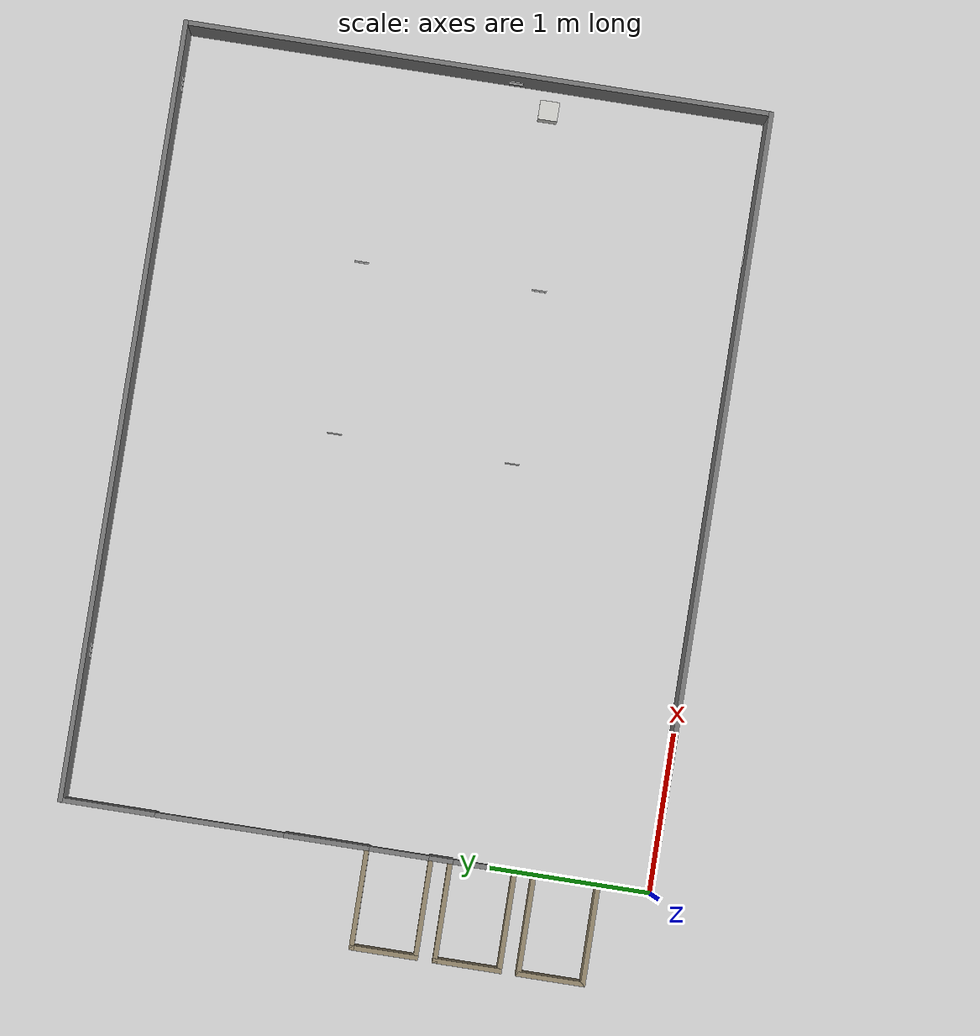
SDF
<sdf version="1.9">
 <world name="almacen_racks">
  <plugin name="ignition::gazebo::systems::Physics" filename="ignition-gazebo-physics-system"/>
  <plugin name="ignition::gazebo::systems::UserCommands" filename="ignition-gazebo-user-commands-system"/>
  <plugin name="ignition::gazebo::systems::SceneBroadcaster" filename="ignition-gazebo-scene-broadcaster-system"/>
  <plugin name="ignition::gazebo::systems::Sensors" filename="ignition-gazebo-sensors-system">
   <render_engine>ogre2</render_engine>
  </plugin>
  <plugin name="ignition::gazebo::systems::Imu" filename="ignition-gazebo-imu-system"/>
  <gravity>0 0 -9.8</gravity>
  <magnetic_field>6e-06 2.3e-05 -4.2e-05</magnetic_field>
  <atmosphere type="adiabatic"/>
  <physics type="ode">
   <max_step_size>0.001</max_step_size>
   <real_time_factor>1</real_time_factor>
   <real_time_update_rate>1000</real_time_update_rate>
  </physics>
  <scene><ambient>0.4 0.4 0.4 1</ambient><background>0.7 0.7 0.7 1</background><shadows>true</shadows></scene>
  <model name="ground_plane">
   <static>true</static>
   <link name="link">
    <collision name="col">
     <geometry><plane><normal>0 0 1</normal><size>100 100</size></plane></geometry>
    </collision>
    <visual name="vis">
     <geometry><plane><normal>0 0 1</normal><size>100 100</size></plane></geometry>
     <material><ambient>0.8 0.8 0.8 1</ambient><diffuse>0.8 0.8 0.8 1</diffuse></material>
    </visual>
    <inertial>
     <mass>1</mass>
     <inertia><ixx>1</ixx><ixy>0</ixy><ixz>0</ixz><iyy>1</iyy><iyz>0</iyz><izz>1</izz></inertia>
    </inertial>
   </link>
  </model>
  <model name="pared_oeste">
   <static>true</static>
   <pose>2.44 3.675 0.205 0 -0 0</pose>
   <link name="link">
    <collision name="col"><geometry><box><size>4.88 0.03 0.41</size></box></geometry></collision>
    <visual name="vis">
     <geometry><box><size>4.88 0.03 0.41</size></box></geometry>
     <material><ambient>0.45 0.45 0.45 1</ambient><diffuse>0.45 0.45 0.45 1</diffuse></material>
    </visual>
    <inertial>
     <mass>1</mass>
     <inertia><ixx>1</ixx><ixy>0</ixy><ixz>0</ixz><iyy>1</iyy><iyz>0</iyz><izz>1</izz></inertia>
    </inertial>
   </link>
  </model>
  <model name="pared_este">
   <static>true</static>
   <pose>2.44 0.015 0.205 0 -0 0</pose>
   <link name="link">
    <collision name="col"><geometry><box><size>4.88 0.03 0.41</size></box></geometry></collision>
    <visual name="vis">
     <geometry><box><size>4.88 0.03 0.41</size></box></geometry>
     <material><ambient>0.45 0.45 0.45 1</ambient><diffuse>0.45 0.45 0.45 1</diffuse></material>
    </visual>
    <inertial>
     <mass>1</mass>
     <inertia><ixx>1</ixx><ixy>0</ixy><ixz>0</ixz><iyy>1</iyy><iyz>0</iyz><izz>1</izz></inertia>
    </inertial>
   </link>
  </model>
  <model name="pared_norte">
   <static>true</static>
   <pose>4.865 1.845 0.205 0 -0 0</pose>
   <link name="link">
    <collision name="col"><geometry><box><size>0.03 3.63 0.41</size></box></geometry></collision>
    <visual name="vis">
     <geometry><box><size>0.03 3.63 0.41</size></box></geometry>
     <material><ambient>0.45 0.45 0.45 1</ambient><diffuse>0.45 0.45 0.45 1</diffuse></material>
    </visual>
    <inertial>
     <mass>1</mass>
     <inertia><ixx>1</ixx><ixy>0</ixy><ixz>0</ixz><iyy>1</iyy><iyz>0</iyz><izz>1</izz></inertia>
    </inertial>
   </link>
  </model>
  <model name="pared_sur_a">
   <static>true</static>
   <pose>0.015 0.175 0.205 0 -0 0</pose>
   <link name="link">
    <collision name="col"><geometry><box><size>0.03 0.35 0.41</size></box></geometry></collision>
    <visual name="vis">
     <geometry><box><size>0.03 0.35 0.41</size></box></geometry>
     <material><ambient>0.45 0.45 0.45 1</ambient><diffuse>0.45 0.45 0.45 1</diffuse></material>
    </visual>
    <inertial>
     <mass>1</mass>
     <inertia><ixx>1</ixx><ixy>0</ixy><ixz>0</ixz><iyy>1</iyy><iyz>0</iyz><izz>1</izz></inertia>
    </inertial>
   </link>
  </model>
  <model name="dintel_1">
   <static>true</static>
   <pose>0.015 0.535 0.335 0 -0 0</pose>
   <link name="link">
    <collision name="col"><geometry><box><size>0.03 0.37 0.15</size></box></geometry></collision>
    <visual name="vis">
     <geometry><box><size>0.03 0.37 0.15</size></box></geometry>
     <material><ambient>0.45 0.45 0.45 1</ambient><diffuse>0.45 0.45 0.45 1</diffuse></material>
    </visual>
    <inertial>
     <mass>1</mass>
     <inertia><ixx>1</ixx><ixy>0</ixy><ixz>0</ixz><iyy>1</iyy><iyz>0</iyz><izz>1</izz></inertia>
    </inertial>
   </link>
  </model>
  <model name="dock_1_izq">
   <static>true</static>
   <pose>-0.31 0.335 0.13 0 -0 0</pose>
   <link name="link">
    <collision name="col"><geometry><box><size>0.62 0.03 0.26</size></box></geometry></collision>
    <visual name="vis">
     <geometry><box><size>0.62 0.03 0.26</size></box></geometry>
     <material><ambient>0.55 0.5 0.4 1</ambient><diffuse>0.55 0.5 0.4 1</diffuse></material>
    </visual>
    <inertial>
     <mass>1</mass>
     <inertia><ixx>1</ixx><ixy>0</ixy><ixz>0</ixz><iyy>1</iyy><iyz>0</iyz><izz>1</izz></inertia>
    </inertial>
   </link>
  </model>
  <model name="dock_1_der">
   <static>true</static>
   <pose>-0.31 0.735 0.13 0 -0 0</pose>
   <link name="link">
    <collision name="col"><geometry><box><size>0.62 0.03 0.26</size></box></geometry></collision>
    <visual name="vis">
     <geometry><box><size>0.62 0.03 0.26</size></box></geometry>
     <material><ambient>0.55 0.5 0.4 1</ambient><diffuse>0.55 0.5 0.4 1</diffuse></material>
    </visual>
    <inertial>
     <mass>1</mass>
     <inertia><ixx>1</ixx><ixy>0</ixy><ixz>0</ixz><iyy>1</iyy><iyz>0</iyz><izz>1</izz></inertia>
    </inertial>
   </link>
  </model>
  <model name="dock_1_frente">
   <static>true</static>
   <pose>-0.605 0.535 0.13 0 -0 0</pose>
   <link name="link">
    <collision name="col"><geometry><box><size>0.03 0.43 0.26</size></box></geometry></collision>
    <visual name="vis">
     <geometry><box><size>0.03 0.43 0.26</size></box></geometry>
     <material><ambient>0.55 0.5 0.4 1</ambient><diffuse>0.55 0.5 0.4 1</diffuse></material>
    </visual>
    <inertial>
     <mass>1</mass>
     <inertia><ixx>1</ixx><ixy>0</ixy><ixz>0</ixz><iyy>1</iyy><iyz>0</iyz><izz>1</izz></inertia>
    </inertial>
   </link>
  </model>
  <model name="pared_sur_b">
   <static>true</static>
   <pose>0.015 0.795 0.205 0 -0 0</pose>
   <link name="link">
    <collision name="col"><geometry><box><size>0.03 0.15 0.41</size></box></geometry></collision>
    <visual name="vis">
     <geometry><box><size>0.03 0.15 0.41</size></box></geometry>
     <material><ambient>0.45 0.45 0.45 1</ambient><diffuse>0.45 0.45 0.45 1</diffuse></material>
    </visual>
    <inertial>
     <mass>1</mass>
     <inertia><ixx>1</ixx><ixy>0</ixy><ixz>0</ixz><iyy>1</iyy><iyz>0</iyz><izz>1</izz></inertia>
    </inertial>
   </link>
  </model>
  <model name="dintel_2">
   <static>true</static>
   <pose>0.015 1.055 0.335 0 -0 0</pose>
   <link name="link">
    <collision name="col"><geometry><box><size>0.03 0.37 0.15</size></box></geometry></collision>
    <visual name="vis">
     <geometry><box><size>0.03 0.37 0.15</size></box></geometry>
     <material><ambient>0.45 0.45 0.45 1</ambient><diffuse>0.45 0.45 0.45 1</diffuse></material>
    </visual>
    <inertial>
     <mass>1</mass>
     <inertia><ixx>1</ixx><ixy>0</ixy><ixz>0</ixz><iyy>1</iyy><iyz>0</iyz><izz>1</izz></inertia>
    </inertial>
   </link>
  </model>
  <model name="dock_2_izq">
   <static>true</static>
   <pose>-0.31 0.855 0.13 0 -0 0</pose>
   <link name="link">
    <collision name="col"><geometry><box><size>0.62 0.03 0.26</size></box></geometry></collision>
    <visual name="vis">
     <geometry><box><size>0.62 0.03 0.26</size></box></geometry>
     <material><ambient>0.55 0.5 0.4 1</ambient><diffuse>0.55 0.5 0.4 1</diffuse></material>
    </visual>
    <inertial>
     <mass>1</mass>
     <inertia><ixx>1</ixx><ixy>0</ixy><ixz>0</ixz><iyy>1</iyy><iyz>0</iyz><izz>1</izz></inertia>
    </inertial>
   </link>
  </model>
  <model name="dock_2_der">
   <static>true</static>
   <pose>-0.31 1.255 0.13 0 -0 0</pose>
   <link name="link">
    <collision name="col"><geometry><box><size>0.62 0.03 0.26</size></box></geometry></collision>
    <visual name="vis">
     <geometry><box><size>0.62 0.03 0.26</size></box></geometry>
     <material><ambient>0.55 0.5 0.4 1</ambient><diffuse>0.55 0.5 0.4 1</diffuse></material>
    </visual>
    <inertial>
     <mass>1</mass>
     <inertia><ixx>1</ixx><ixy>0</ixy><ixz>0</ixz><iyy>1</iyy><iyz>0</iyz><izz>1</izz></inertia>
    </inertial>
   </link>
  </model>
  <model name="dock_2_frente">
   <static>true</static>
   <pose>-0.605 1.055 0.13 0 -0 0</pose>
   <link name="link">
    <collision name="col"><geometry><box><size>0.03 0.43 0.26</size></box></geometry></collision>
    <visual name="vis">
     <geometry><box><size>0.03 0.43 0.26</size></box></geometry>
     <material><ambient>0.55 0.5 0.4 1</ambient><diffuse>0.55 0.5 0.4 1</diffuse></material>
    </visual>
    <inertial>
     <mass>1</mass>
     <inertia><ixx>1</ixx><ixy>0</ixy><ixz>0</ixz><iyy>1</iyy><iyz>0</iyz><izz>1</izz></inertia>
    </inertial>
   </link>
  </model>
  <model name="pared_sur_c">
   <static>true</static>
   <pose>0.015 1.315 0.205 0 -0 0</pose>
   <link name="link">
    <collision name="col"><geometry><box><size>0.03 0.15 0.41</size></box></geometry></collision>
    <visual name="vis">
     <geometry><box><size>0.03 0.15 0.41</size></box></geometry>
     <material><ambient>0.45 0.45 0.45 1</ambient><diffuse>0.45 0.45 0.45 1</diffuse></material>
    </visual>
    <inertial>
     <mass>1</mass>
     <inertia><ixx>1</ixx><ixy>0</ixy><ixz>0</ixz><iyy>1</iyy><iyz>0</iyz><izz>1</izz></inertia>
    </inertial>
   </link>
  </model>
  <model name="dintel_3">
   <static>true</static>
   <pose>0.015 1.575 0.335 0 -0 0</pose>
   <link name="link">
    <collision name="col"><geometry><box><size>0.03 0.37 0.15</size></box></geometry></collision>
    <visual name="vis">
     <geometry><box><size>0.03 0.37 0.15</size></box></geometry>
     <material><ambient>0.45 0.45 0.45 1</ambient><diffuse>0.45 0.45 0.45 1</diffuse></material>
    </visual>
    <inertial>
     <mass>1</mass>
     <inertia><ixx>1</ixx><ixy>0</ixy><ixz>0</ixz><iyy>1</iyy><iyz>0</iyz><izz>1</izz></inertia>
    </inertial>
   </link>
  </model>
  <model name="dock_3_izq">
   <static>true</static>
   <pose>-0.31 1.375 0.13 0 -0 0</pose>
   <link name="link">
    <collision name="col"><geometry><box><size>0.62 0.03 0.26</size></box></geometry></collision>
    <visual name="vis">
     <geometry><box><size>0.62 0.03 0.26</size></box></geometry>
     <material><ambient>0.55 0.5 0.4 1</ambient><diffuse>0.55 0.5 0.4 1</diffuse></material>
    </visual>
    <inertial>
     <mass>1</mass>
     <inertia><ixx>1</ixx><ixy>0</ixy><ixz>0</ixz><iyy>1</iyy><iyz>0</iyz><izz>1</izz></inertia>
    </inertial>
   </link>
  </model>
  <model name="dock_3_der">
   <static>true</static>
   <pose>-0.31 1.775 0.13 0 -0 0</pose>
   <link name="link">
    <collision name="col"><geometry><box><size>0.62 0.03 0.26</size></box></geometry></collision>
    <visual name="vis">
     <geometry><box><size>0.62 0.03 0.26</size></box></geometry>
     <material><ambient>0.55 0.5 0.4 1</ambient><diffuse>0.55 0.5 0.4 1</diffuse></material>
    </visual>
    <inertial>
     <mass>1</mass>
     <inertia><ixx>1</ixx><ixy>0</ixy><ixz>0</ixz><iyy>1</iyy><iyz>0</iyz><izz>1</izz></inertia>
    </inertial>
   </link>
  </model>
  <model name="dock_3_frente">
   <static>true</static>
   <pose>-0.605 1.575 0.13 0 -0 0</pose>
   <link name="link">
    <collision name="col"><geometry><box><size>0.03 0.43 0.26</size></box></geometry></collision>
    <visual name="vis">
     <geometry><box><size>0.03 0.43 0.26</size></box></geometry>
     <material><ambient>0.55 0.5 0.4 1</ambient><diffuse>0.55 0.5 0.4 1</diffuse></material>
    </visual>
    <inertial>
     <mass>1</mass>
     <inertia><ixx>1</ixx><ixy>0</ixy><ixz>0</ixz><iyy>1</iyy><iyz>0</iyz><izz>1</izz></inertia>
    </inertial>
   </link>
  </model>
  <model name="pared_sur_d">
   <static>true</static>
   <pose>0.015 2.025 0.205 0 -0 0</pose>
   <link name="link">
    <collision name="col"><geometry><box><size>0.03 0.53 0.41</size></box></geometry></collision>
    <visual name="vis">
     <geometry><box><size>0.03 0.53 0.41</size></box></geometry>
     <material><ambient>0.45 0.45 0.45 1</ambient><diffuse>0.45 0.45 0.45 1</diffuse></material>
    </visual>
    <inertial>
     <mass>1</mass>
     <inertia><ixx>1</ixx><ixy>0</ixy><ixz>0</ixz><iyy>1</iyy><iyz>0</iyz><izz>1</izz></inertia>
    </inertial>
   </link>
  </model>
  <model name="dintel_4">
   <static>true</static>
   <pose>0.015 2.69 0.335 0 -0 0</pose>
   <link name="link">
    <collision name="col"><geometry><box><size>0.03 0.8 0.15</size></box></geometry></collision>
    <visual name="vis">
     <geometry><box><size>0.03 0.8 0.15</size></box></geometry>
     <material><ambient>0.45 0.45 0.45 1</ambient><diffuse>0.45 0.45 0.45 1</diffuse></material>
    </visual>
    <inertial>
     <mass>1</mass>
     <inertia><ixx>1</ixx><ixy>0</ixy><ixz>0</ixz><iyy>1</iyy><iyz>0</iyz><izz>1</izz></inertia>
    </inertial>
   </link>
  </model>
  <model name="pared_sur_e">
   <static>true</static>
   <pose>0.015 3.39 0.205 0 -0 0</pose>
   <link name="link">
    <collision name="col"><geometry><box><size>0.03 0.6 0.41</size></box></geometry></collision>
    <visual name="vis">
     <geometry><box><size>0.03 0.6 0.41</size></box></geometry>
     <material><ambient>0.45 0.45 0.45 1</ambient><diffuse>0.45 0.45 0.45 1</diffuse></material>
    </visual>
    <inertial>
     <mass>1</mass>
     <inertia><ixx>1</ixx><ixy>0</ixy><ixz>0</ixz><iyy>1</iyy><iyz>0</iyz><izz>1</izz></inertia>
    </inertial>
   </link>
  </model>
  <model name="aruco_5">
   <static>true</static>
   <pose>3.98 0.035 0.15 7e-06 -1.57079 -1.57079</pose>
   <link name="link">
    <visual name="vis">
     <geometry><box><size>0.09 0.09 0.003</size></box></geometry>
     <material>
      <diffuse>1 1 1 1</diffuse>
      <pbr>
       <metal>
        <albedo_map>model://puzzlebot_description/textures/arucos/5.jpg</albedo_map>
        <metalness>0.0</metalness>
        <roughness>1.0</roughness>
       </metal>
      </pbr>
     </material>
    </visual>
    <collision name="col"><geometry><box><size>0.09 0.09 0.003</size></box></geometry></collision>
    <inertial>
     <mass>1</mass>
     <inertia><ixx>1</ixx><ixy>0</ixy><ixz>0</ixz><iyy>1</iyy><iyz>0</iyz><izz>1</izz></inertia>
    </inertial>
   </link>
  </model>
  <model name="aruco_21">
   <static>true</static>
   <pose>0.79 0.035 0.15 7e-06 -1.57079 -1.57079</pose>
   <link name="link">
    <visual name="vis">
     <geometry><box><size>0.09 0.09 0.003</size></box></geometry>
     <material>
      <diffuse>1 1 1 1</diffuse>
      <pbr>
       <metal>
        <albedo_map>model://puzzlebot_description/textures/arucos/21.jpg</albedo_map>
        <metalness>0.0</metalness>
        <roughness>1.0</roughness>
       </metal>
      </pbr>
     </material>
    </visual>
    <collision name="col"><geometry><box><size>0.09 0.09 0.003</size></box></geometry></collision>
    <inertial>
     <mass>1</mass>
     <inertia><ixx>1</ixx><ixy>0</ixy><ixz>0</ixz><iyy>1</iyy><iyz>0</iyz><izz>1</izz></inertia>
    </inertial>
   </link>
  </model>
  <model name="aruco_7">
   <static>true</static>
   <pose>4.515 3.655 0.15 -7e-06 -1.57079 1.57079</pose>
   <link name="link">
    <visual name="vis">
     <geometry><box><size>0.09 0.09 0.003</size></box></geometry>
     <material>
      <diffuse>1 1 1 1</diffuse>
      <pbr>
       <metal>
        <albedo_map>model://puzzlebot_description/textures/arucos/7.jpg</albedo_map>
        <metalness>0.0</metalness>
        <roughness>1.0</roughness>
       </metal>
      </pbr>
     </material>
    </visual>
    <collision name="col"><geometry><box><size>0.09 0.09 0.003</size></box></geometry></collision>
    <inertial>
     <mass>1</mass>
     <inertia><ixx>1</ixx><ixy>0</ixy><ixz>0</ixz><iyy>1</iyy><iyz>0</iyz><izz>1</izz></inertia>
    </inertial>
   </link>
  </model>
  <model name="aruco_37">
   <static>true</static>
   <pose>0.95 3.655 0.15 -7e-06 -1.57079 1.57079</pose>
   <link name="link">
    <visual name="vis">
     <geometry><box><size>0.09 0.09 0.003</size></box></geometry>
     <material>
      <diffuse>1 1 1 1</diffuse>
      <pbr>
       <metal>
        <albedo_map>model://puzzlebot_description/textures/arucos/37.jpg</albedo_map>
        <metalness>0.0</metalness>
        <roughness>1.0</roughness>
       </metal>
      </pbr>
     </material>
    </visual>
    <collision name="col"><geometry><box><size>0.09 0.09 0.003</size></box></geometry></collision>
    <inertial>
     <mass>1</mass>
     <inertia><ixx>1</ixx><ixy>0</ixy><ixz>0</ixz><iyy>1</iyy><iyz>0</iyz><izz>1</izz></inertia>
    </inertial>
   </link>
  </model>
  <model name="aruco_17">
   <static>true</static>
   <pose>4.845 1.6 0.15 7e-06 -1.57079 7e-06</pose>
   <link name="link">
    <visual name="vis">
     <geometry><box><size>0.09 0.09 0.003</size></box></geometry>
     <material>
      <diffuse>1 1 1 1</diffuse>
      <pbr>
       <metal>
        <albedo_map>model://puzzlebot_description/textures/arucos/17.jpg</albedo_map>
        <metalness>0.0</metalness>
        <roughness>1.0</roughness>
       </metal>
      </pbr>
     </material>
    </visual>
    <collision name="col"><geometry><box><size>0.09 0.09 0.003</size></box></geometry></collision>
    <inertial>
     <mass>1</mass>
     <inertia><ixx>1</ixx><ixy>0</ixy><ixz>0</ixz><iyy>1</iyy><iyz>0</iyz><izz>1</izz></inertia>
    </inertial>
   </link>
  </model>
  <model name="aruco_19">
   <static>true</static>
   <pose>3.59656 2.3786 0.100001 3.14159 -1.57079 3.14159</pose>
   <link name="link">
    <visual name="vis">
     <geometry><box><size>0.09 0.09 0.003</size></box></geometry>
     <material>
      <diffuse>1 1 1 1</diffuse>
      <pbr>
       <metal>
        <albedo_map>model://puzzlebot_description/textures/arucos/19.jpg</albedo_map>
        <metalness>0.0</metalness>
        <roughness>1.0</roughness>
       </metal>
      </pbr>
     </material>
    </visual>
    <collision name="col"><geometry><box><size>0.09 0.09 0.003</size></box></geometry></collision>
    <inertial>
     <mass>1</mass>
     <inertia><ixx>1</ixx><ixy>0</ixy><ixz>0</ixz><iyy>1</iyy><iyz>0</iyz><izz>1</izz></inertia>
    </inertial>
   </link>
  </model>
  <model name="aruco_41">
   <static>true</static>
   <pose>2.51307 2.3786 0.100001 3.14159 -1.57079 -3e-06</pose>
   <link name="link">
    <visual name="vis">
     <geometry><box><size>0.09 0.09 0.003</size></box></geometry>
     <material>
      <diffuse>1 1 1 1</diffuse>
      <pbr>
       <metal>
        <albedo_map>model://puzzlebot_description/textures/arucos/41.jpg</albedo_map>
        <metalness>0.0</metalness>
        <roughness>1.0</roughness>
       </metal>
      </pbr>
     </material>
    </visual>
    <collision name="col"><geometry><box><size>0.09 0.09 0.003</size></box></geometry></collision>
    <inertial>
     <mass>1</mass>
     <inertia><ixx>1</ixx><ixy>0</ixy><ixz>0</ixz><iyy>1</iyy><iyz>0</iyz><izz>1</izz></inertia>
    </inertial>
   </link>
  </model>
  <model name="aruco_20">
   <static>true</static>
   <pose>3.59038 1.2575 0.100001 3.14159 -1.57079 3.14159</pose>
   <link name="link">
    <visual name="vis">
     <geometry><box><size>0.09 0.09 0.003</size></box></geometry>
     <material>
      <diffuse>1 1 1 1</diffuse>
      <pbr>
       <metal>
        <albedo_map>model://puzzlebot_description/textures/arucos/20.jpg</albedo_map>
        <metalness>0.0</metalness>
        <roughness>1.0</roughness>
       </metal>
      </pbr>
     </material>
    </visual>
    <collision name="col"><geometry><box><size>0.09 0.09 0.003</size></box></geometry></collision>
    <inertial>
     <mass>1</mass>
     <inertia><ixx>1</ixx><ixy>0</ixy><ixz>0</ixz><iyy>1</iyy><iyz>0</iyz><izz>1</izz></inertia>
    </inertial>
   </link>
  </model>
  <model name="aruco_25">
   <static>true</static>
   <pose>2.49849 1.2575 0.100001 3.14159 -1.57079 -3e-06</pose>
   <link name="link">
    <visual name="vis">
     <geometry><box><size>0.09 0.09 0.003</size></box></geometry>
     <material>
      <diffuse>1 1 1 1</diffuse>
      <pbr>
       <metal>
        <albedo_map>model://puzzlebot_description/textures/arucos/25.jpg</albedo_map>
        <metalness>0.0</metalness>
        <roughness>1.0</roughness>
       </metal>
      </pbr>
     </material>
    </visual>
    <collision name="col"><geometry><box><size>0.09 0.09 0.003</size></box></geometry></collision>
    <inertial>
     <mass>1</mass>
     <inertia><ixx>1</ixx><ixy>0</ixy><ixz>0</ixz><iyy>1</iyy><iyz>0</iyz><izz>1</izz></inertia>
    </inertial>
   </link>
  </model>
  <model name="caja_qr_R2">
   <static>false</static>
   <pose>4.675 1.375 0.32 0 -0 0</pose>
   <link name="link">
    <visual name="vis">
     <geometry><box><size>0.12 0.12 0.12</size></box></geometry>
     <material><ambient>0.8 0.8 0.78 1</ambient><diffuse>0.8 0.8 0.78 1</diffuse></material>
    </visual>
    <collision name="col">
     <geometry><box><size>0.12 0.12 0.12</size></box></geometry>
     <surface><friction><ode><mu>1.0</mu><mu2>1.0</mu2></ode></friction></surface>
    </collision>
    <inertial>
     <mass>0.5</mass>
     <inertia><ixx>0.0012</ixx><ixy>0</ixy><ixz>0</ixz><iyy>0.0012</iyy><iyz>0</iyz><izz>0.0012</izz></inertia>
    </inertial>
   </link>
  </model>
  <light name="sun" type="directional">
   <pose>0 0 10 0 -0 0</pose>
   <intensity>1</intensity>
   <direction>-0.5 0.1 -0.9</direction>
   <diffuse>0.8 0.8 0.8 1</diffuse>
   <specular>0.2 0.2 0.2 1</specular>
   <attenuation>
    <range>1000</range>
    <linear>0.01</linear>
    <constant>0.90000000000000002</constant>
    <quadratic>0.001</quadratic>
   </attenuation>
   <spot><inner_angle>0</inner_angle><outer_angle>0</outer_angle><falloff>0</falloff></spot>
  </light>
 </world>
</sdf>
